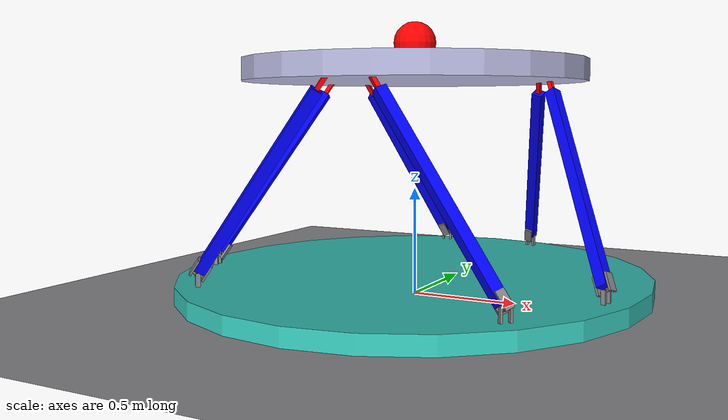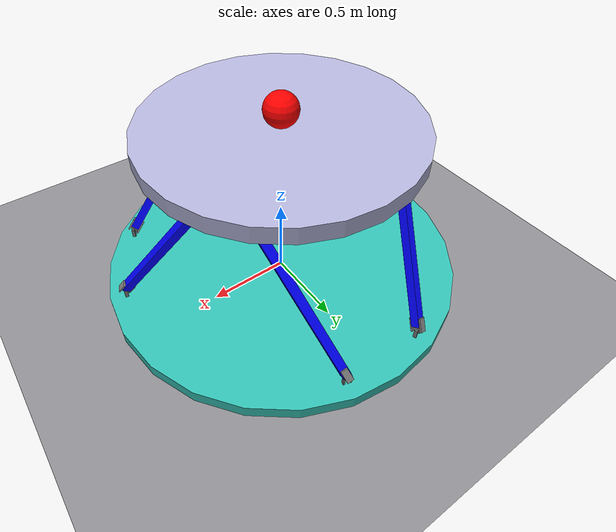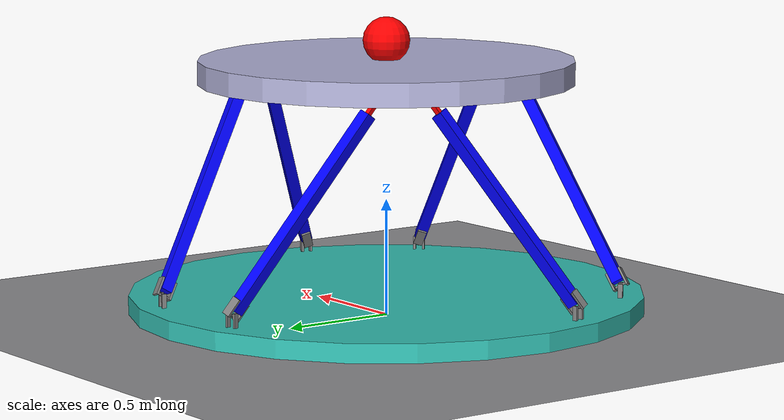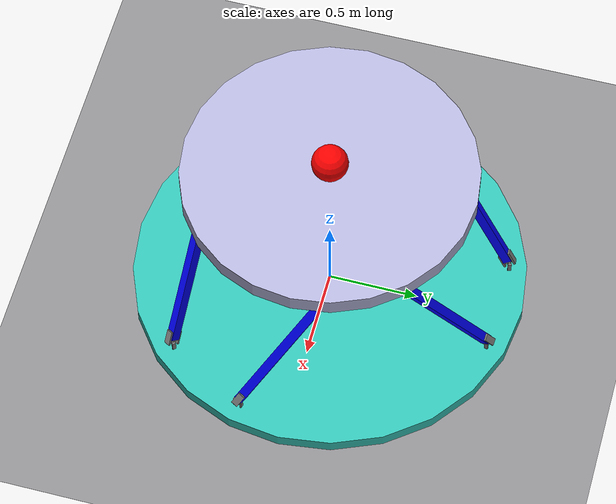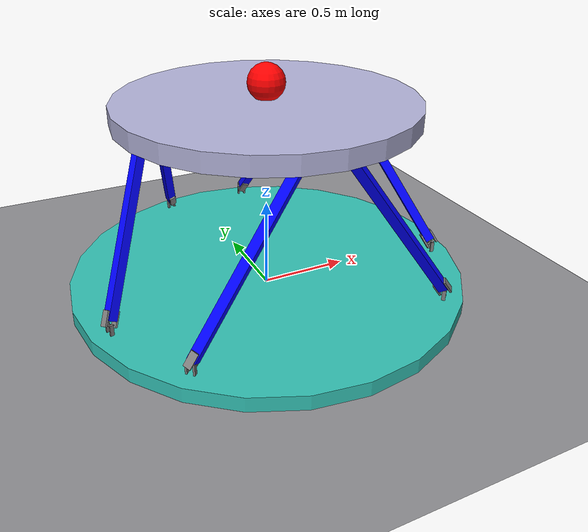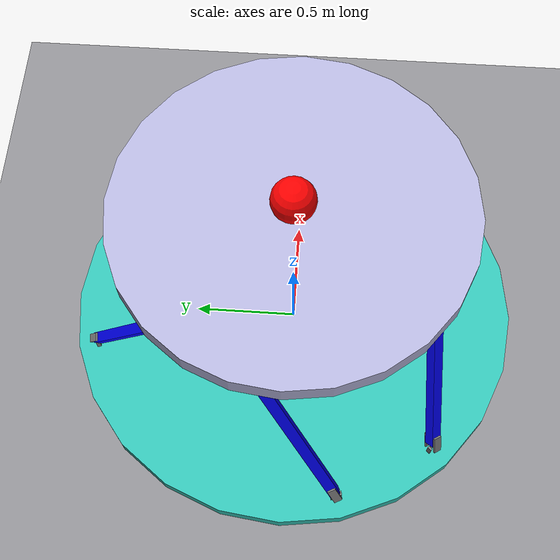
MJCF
<mujoco>
    <option timestep="0.004"/>

    <visual>
        <headlight diffuse="0.6 0.6 0.6" ambient="0.1 0.1 0.1" specular="0.9 0.9 0.9"/>
        <map fogstart="100.0" fogend="300.0"/>
        <rgba haze="0.75 0.75 0.77 1"/>
    </visual>

    <asset>
        <texture name="skybox" type="skybox" builtin="gradient" rgb1="0.55 0.55 0.57" rgb2="0.55 0.55 0.57" width="512" height="512"/>
        <texture type="2d" name="motphys-ground" builtin="checker" rgb1="0.62 0.62 0.63" rgb2="0.49 0.49 0.51"
            width="300" height="300"/>
        <material name="motphys-ground" texture="motphys-ground" texuniform="true" texrepeat="1.25 1.25" reflectance="0.0"/>

        <texture type="2d" name="platform" builtin="checker" rgb1="0.5 0.5 0.8" rgb2="0.9 0.9 0.9" width="300" height="300"/>
        <material name="grey_metal" texture="platform" texuniform="true" texrepeat="2 2" specular="1" metallic="0.8"/>
    </asset>

    <default>
        <joint damping="1" solreflimit="0.002 1"/>
        <position kp="200000" kv="4000" inheritrange="1"/>
        <equality solref="0.001 1"/>
        <default class="leg-slide">
            <joint type="slide" range="0 0.7" axis="0 0 1" />
        </default>
        <default class="no-collision">
            <geom contype="0" conaffinity="0"/>
            <default class="leg_down">
                <geom type="box" size="0.025 0.025 0.48" rgba="0 0 1 1"/>
            </default>
            <default class="leg_up">
                <geom type="box" size="0.01 0.01 0.5" rgba="1 0 0 1"/>
            </default>
        </default>
    </default>

    <worldbody>
        <light pos="0 0 1.5" dir="0 0 -1" directional="true" diffuse="0.8 0.8 0.8"/>
        <light pos="0 0 1.5" dir="0 -5 -1" directional="true"/>

        <geom name="floor" pos="0 0 0" size="0 0 0.01" type="plane" material="motphys-ground"/>

        <body name="ball" pos="0 0 1.18">
            <joint name="ball_free" type="free"/>
            <geom name="ball_geom" type="sphere" size="0.10" mass="0.2" rgba="1 0 0 1"/>
        </body>

        <body name="top" pos="0 0 1">
            <freejoint/>
            <geom type="cylinder" size="0.8 0.05" pos="0 0 0.05" material="grey_metal"/>
        </body>

        <body name="disturb_stage" pos="0 0 0.025">
            <geom class="no-collision" type="cylinder" size="1.10 0.04" pos="0 0 0.04" rgba="0.20 0.75 0.70 1"/>

            <body childclass="no-collision" pos="-0.707 -0.707 0.08" xyaxes="1 -1 0 1 1 0">
                <geom type="box" pos="-0.02 0.0 0.03" size="0.005 0.01 0.03"/>
                <geom type="box" pos="0.02 0.0 0.03" size="0.005 0.01  0.03"/>
                <geom type="cylinder" pos="0 0 0.05" size="0.005 0.02" axisangle="0 1 0 90"/>
                <body name="leg00" pos="0 0 0.05" euler="-30 20 0">
                    <joint name="leg00_hinge_y" type="hinge" axis="0 1 0"/>
                    <joint name="leg00_hinge_x" type="hinge" axis="1 0 0"/>
                    <geom type="cylinder" size="0.005 0.03" axisangle="1 0 0 90"/>
                    <geom type="box" pos="0 -0.03 0.03" size="0.02 0.005 0.04"/>
                    <geom type="box" pos="0 0.03 0.03" size="0.02 0.005 0.04"/>
                    <geom class="leg_down" pos="0 0 0.5" rgba="0 0 1 1"/>
                    <body name="leg_up00" pos="0 0 0.1">
                        <joint class="leg-slide" name="slide00"/>
                        <geom class="leg_up" pos="0 0 0.5"/>
                        <body name="top_connect00" pos="0 0 1">
                            <geom type="sphere" size="0.02" rgba="1 0 0 1"/>
                        </body>
                    </body>
                </body>
            </body>
            <body childclass="no-collision" pos="0.707 -0.707 0.08" xyaxes="1 1 0 -1 1 0">
                <geom type="box" pos="-0.02 0.0 0.03" size="0.005 0.01 0.03"/>
                <geom type="box" pos="0.02 0.0 0.03" size="0.005 0.01  0.03"/>
                <geom type="cylinder" pos="0 0 0.05" size="0.005 0.02" axisangle="0 1 0 90"/>
                <body name="leg10" pos="0 0 0.05" euler="-30 -20 0">
                    <joint name="leg10_hinge_y" type="hinge" axis="0 1 0"/>
                    <joint name="leg10_hinge_x" type="hinge" axis="1 0 0"/>
                    <geom type="cylinder" size="0.005 0.03" axisangle="1 0 0 90"/>
                    <geom type="box" pos="0 -0.03 0.03" size="0.02 0.005 0.04"/>
                    <geom type="box" pos="0 0.03 0.03" size="0.02 0.005 0.04"/>
                    <geom class="leg_down" pos="0 0 0.5" rgba="0 0 1 1"/>
                    <body name="leg_up10" pos="0 0 0.1">
                        <joint class="leg-slide" name="slide10"/>
                        <geom class="leg_up" pos="0 0 0.5"/>
                        <body name="top_connect10" pos="0 0 1">
                            <geom type="sphere" size="0.02" rgba="1 0 0 1"/>
                        </body>
                    </body>
                </body>
            </body>
            <body childclass="no-collision" pos="0.96578 -0.25878 0.08" xyaxes="0.366025 1.36603 0 -1.36603 0.366025 0">
                <geom type="box" pos="-0.02 0.0 0.03" size="0.005 0.01 0.03"/>
                <geom type="box" pos="0.02 0.0 0.03" size="0.005 0.01  0.03"/>
                <geom type="cylinder" pos="0 0 0.05" size="0.005 0.02" axisangle="0 1 0 90"/>
                <body name="leg01" pos="0 0 0.05" euler="-30 20 0">
                    <joint name="leg01_hinge_y" type="hinge" axis="0 1 0"/>
                    <joint name="leg01_hinge_x" type="hinge" axis="1 0 0"/>
                    <geom type="cylinder" size="0.005 0.03" axisangle="1 0 0 90"/>
                    <geom type="box" pos="0 -0.03 0.03" size="0.02 0.005 0.04"/>
                    <geom type="box" pos="0 0.03 0.03" size="0.02 0.005 0.04"/>
                    <geom class="leg_down" pos="0 0 0.5" rgba="0 0 1 1"/>
                    <body name="leg_up01" pos="0 0 0.1">
                        <joint class="leg-slide" name="slide01"/>
                        <geom class="leg_up" pos="0 0 0.5"/>
                        <body name="top_connect01" pos="0 0 1">
                            <geom type="sphere" size="0.02" rgba="1 0 0 1"/>
                        </body>
                    </body>
                </body>
            </body>
            <body childclass="no-collision" pos="0.25878 0.96578 0.08" xyaxes="-1.36603 0.366025 0 -0.366025 -1.36603 0">
                <geom type="box" pos="-0.02 0.0 0.03" size="0.005 0.01 0.03"/>
                <geom type="box" pos="0.02 0.0 0.03" size="0.005 0.01  0.03"/>
                <geom type="cylinder" pos="0 0 0.05" size="0.005 0.02" axisangle="0 1 0 90"/>
                <body name="leg11" pos="0 0 0.05" euler="-30 -20 0">
                    <joint name="leg11_hinge_y" type="hinge" axis="0 1 0"/>
                    <joint name="leg11_hinge_x" type="hinge" axis="1 0 0"/>
                    <geom type="cylinder" size="0.005 0.03" axisangle="1 0 0 90"/>
                    <geom type="box" pos="0 -0.03 0.03" size="0.02 0.005 0.04"/>
                    <geom type="box" pos="0 0.03 0.03" size="0.02 0.005 0.04"/>
                    <geom class="leg_down" pos="0 0 0.5" rgba="0 0 1 1"/>
                    <body name="leg_up11" pos="0 0 0.1">
                        <joint class="leg-slide" name="slide11"/>
                        <geom class="leg_up" pos="0 0 0.5"/>
                        <body name="top_connect11" pos="0 0 1">
                            <geom type="sphere" size="0.02" rgba="1 0 0 1"/>
                        </body>
                    </body>
                </body>
            </body>
            <body childclass="no-collision" pos="-0.25878 0.96578 0.08" xyaxes="-1.36603 -0.366025 0 0.366025 -1.36603 0">
                <geom type="box" pos="-0.02 0.0 0.03" size="0.005 0.01 0.03"/>
                <geom type="box" pos="0.02 0.0 0.03" size="0.005 0.01  0.03"/>
                <geom type="cylinder" pos="0 0 0.05" size="0.005 0.02" axisangle="0 1 0 90"/>
                <body name="leg02" pos="0 0 0.05" euler="-30 20 0">
                    <joint name="leg02_hinge_y" type="hinge" axis="0 1 0"/>
                    <joint name="leg02_hinge_x" type="hinge" axis="1 0 0"/>
                    <geom type="cylinder" size="0.005 0.03" axisangle="1 0 0 90"/>
                    <geom type="box" pos="0 -0.03 0.03" size="0.02 0.005 0.04"/>
                    <geom type="box" pos="0 0.03 0.03" size="0.02 0.005 0.04"/>
                    <geom class="leg_down" pos="0 0 0.5" rgba="0 0 1 1"/>
                    <body name="leg_up02" pos="0 0 0.1">
                        <joint class="leg-slide" name="slide02"/>
                        <geom class="leg_up" pos="0 0 0.5"/>
                        <body name="top_connect02" pos="0 0 1">
                            <geom type="sphere" size="0.02" rgba="1 0 0 1"/>
                        </body>
                    </body>
                </body>
            </body>
            <body childclass="no-collision" pos="-0.96578 -0.25878 0.08" xyaxes="0.366025 -1.36603 0 1.36603 0.366025 0">
                <geom type="box" pos="-0.02 0.0 0.03" size="0.005 0.01 0.03"/>
                <geom type="box" pos="0.02 0.0 0.03" size="0.005 0.01  0.03"/>
                <geom type="cylinder" pos="0 0 0.05" size="0.005 0.02" axisangle="0 1 0 90"/>
                <body name="leg12" pos="0 0 0.05" euler="-30 -20 0">
                    <joint name="leg12_hinge_y" type="hinge" axis="0 1 0"/>
                    <joint name="leg12_hinge_x" type="hinge" axis="1 0 0"/>
                    <geom type="cylinder" size="0.005 0.03" axisangle="1 0 0 90"/>
                    <geom type="box" pos="0 -0.03 0.03" size="0.02 0.005 0.04"/>
                    <geom type="box" pos="0 0.03 0.03" size="0.02 0.005 0.04"/>
                    <geom class="leg_down" pos="0 0 0.5" rgba="0 0 1 1"/>
                    <body name="leg_up12" pos="0 0 0.1">
                        <joint class="leg-slide" name="slide12"/>
                        <geom class="leg_up" pos="0 0 0.5"/>
                        <body name="top_connect12" pos="0 0 1">
                            <geom type="sphere" size="0.02" rgba="1 0 0 1"/>
                        </body>
                    </body>
                </body>
            </body>
        </body>
    </worldbody>

    <equality>
        <connect body1="leg_up00" body2="top" anchor="0 0 1"/>
        <connect body1="leg_up01" body2="top" anchor="0 0 1"/>
        <connect body1="leg_up02" body2="top" anchor="0 0 1"/>
        <connect body1="leg_up10" body2="top" anchor="0 0 1"/>
        <connect body1="leg_up11" body2="top" anchor="0 0 1"/>
        <connect body1="leg_up12" body2="top" anchor="0 0 1"/>
    </equality>

    <actuator>
        <position name="a0" joint="slide00" />
        <position name="a1" joint="slide10" />
        <position name="a2" joint="slide01" />
        <position name="a3" joint="slide11" />
        <position name="a4" joint="slide02" />
        <position name="a5" joint="slide12" />
    </actuator>
</mujoco>
